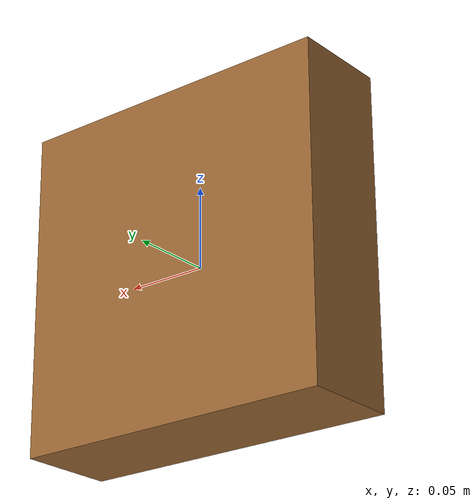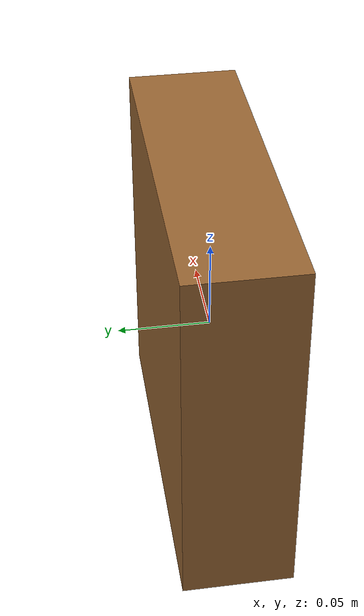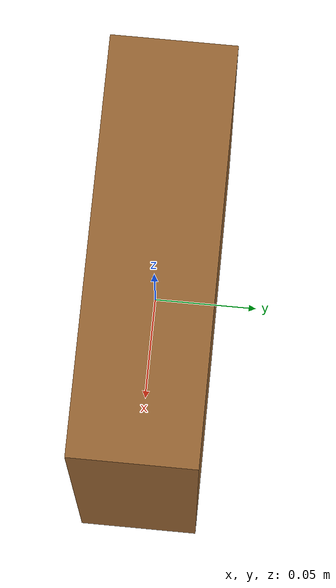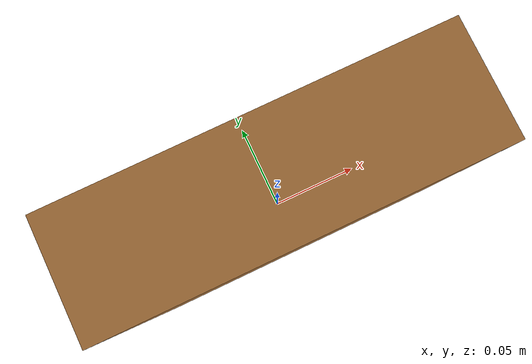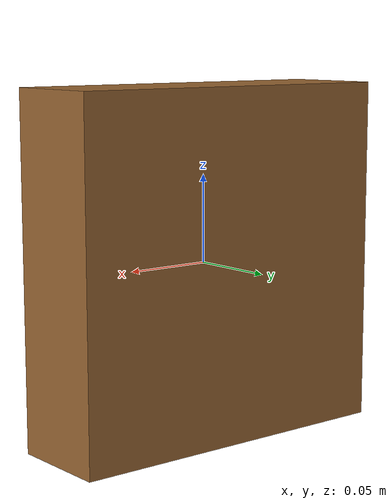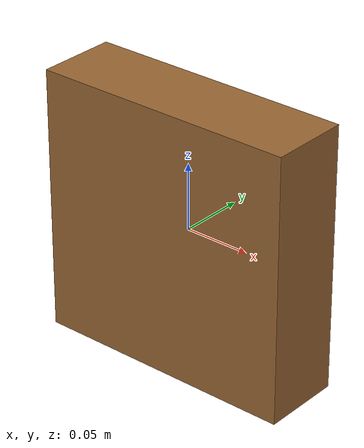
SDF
<?xml version="1.0"?>
<sdf version="1.6">
  <model name="grasp_test_table">
    <static>1</static>
    <link name="link">
      <collision name="col">
        <geometry><box><size>0.20 0.06 0.20</size></box></geometry>
        <surface>
          <friction><ode><mu>1.0</mu><mu2>1.0</mu2></ode></friction>
          <contact>
            <ode>
              <kp>1e5</kp>
              <kd>50</kd>
              <max_vel>0.01</max_vel>
              <min_depth>0.001</min_depth>
            </ode>
          </contact>
        </surface>
      </collision>
      <visual name="vis">
        <geometry><box><size>0.20 0.06 0.20</size></box></geometry>
        <material>
          <ambient>0.6 0.4 0.2 1</ambient>
          <diffuse>0.6 0.4 0.2 1</diffuse>
        </material>
      </visual>
    </link>
  </model>
</sdf>
